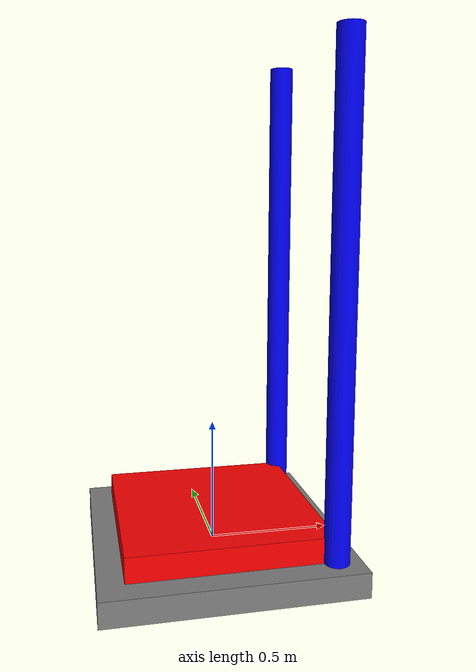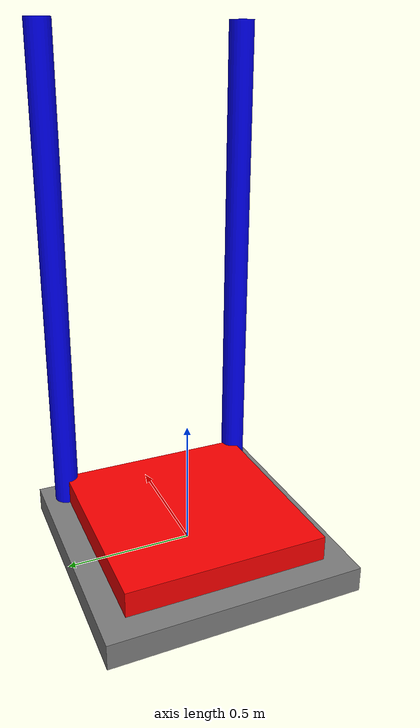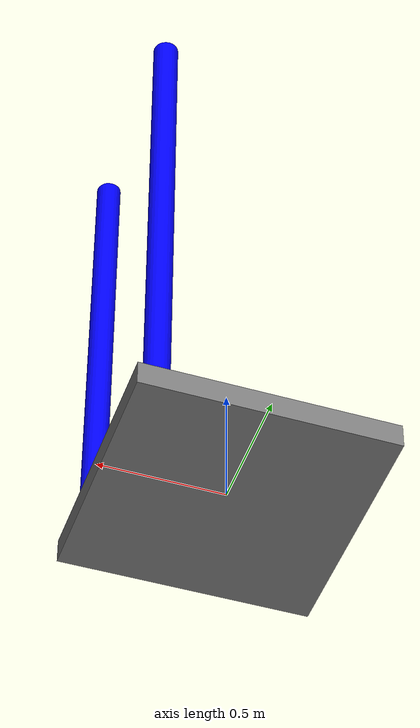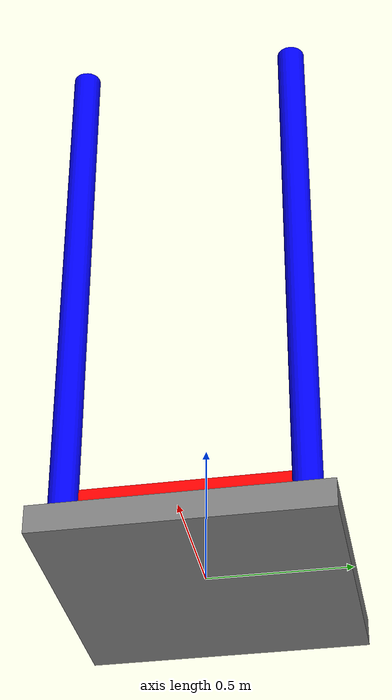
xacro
<?xml version="1.0"?>
<robot xmlns:xacro="http://ros.org/wiki/xacro" name="my_bot">

  <material name="gray">
    <color rgba="0.5 0.5 0.5 1"/>
  </material>
  <material name="blue">
    <color rgba="0.0 0.0 1.0 1"/>
  </material>
  <material name="red">
    <color rgba="1.0 0.0 0.0 1"/>
  </material>

  <xacro:include filename="ros2_control.xacro"/>
  <xacro:include filename="base_link.xacro"/>
  <xacro:include filename="frame.xacro"/>
  <xacro:include filename="elevator.xacro"/>

  <xacro:ros2_control/>
  <xacro:base_link/>
  <xacro:frame/>
  <xacro:elevator/>

  <!-- Gazebo Plugins -->
  <gazebo>
    <plugin name="gazebo_ros_control" filename="libgazebo_ros_control.so"/>
  </gazebo>

</robot>

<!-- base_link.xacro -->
<robot xmlns:xacro="http://www.ros.org/wiki/xacro">
  <xacro:macro name="base_link" params="">
    <link name="base_link">
      <visual>
        <geometry>
          <box size="1 1 0.1"/>
        </geometry>
        <material name="gray"/>
      </visual>
      <collision>
        <geometry>
          <box size="1 1 0.1"/>
        </geometry>
      </collision>
      <inertial>
        <mass value="1.0"/> <!-- Mass in kilograms -->
        <origin xyz="0 0 0" rpy="0 0 0"/> <!-- Center of mass -->
        <inertia ixx="0.1" ixy="0.0" ixz="0.0" iyy="0.1" iyz="0.0" izz="0.1"/> <!-- Moment of inertia -->
      </inertial>
    </link>
  </xacro:macro>
</robot>

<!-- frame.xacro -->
<robot xmlns:xacro="http://www.ros.org/wiki/xacro">
  <xacro:macro name="frame" params="">
    <link name="frame_1">
      <visual>
        <geometry>
          <cylinder length="2" radius="0.05"/>
        </geometry>
        <material name="blue"/>
      </visual>
      <collision>
        <geometry>
          <cylinder length="2" radius="0.05"/>
        </geometry>
      </collision>
      <inertial>
        <mass value="0.5"/> <!-- Adjust mass as needed -->
        <origin xyz="0 0 0" rpy="0 0 0"/>
        <inertia ixx="0.0042" ixy="0.0" ixz="0.0" iyy="0.0042" iyz="0.0" izz="0.0417"/>
      </inertial>
    </link>

    <link name="frame_2">
      <visual>
        <geometry>
          <cylinder length="2" radius="0.05"/>
        </geometry>
        <material name="blue"/>
      </visual>
      <collision>
        <geometry>
          <cylinder length="2" radius="0.05"/>
        </geometry>
      </collision>
      <inertial>
        <mass value="0.5"/> <!-- Adjust mass as needed -->
        <origin xyz="0 0 0" rpy="0 0 0"/>
        <inertia ixx="0.0042" ixy="0.0" ixz="0.0" iyy="0.0042" iyz="0.0" izz="0.0417"/>
      </inertial>
    </link>

    <!-- Joints for Frame -->
    <joint name="frame_1_joint" type="fixed">
      <parent link="base_link"/>
      <child link="frame_1"/>
      <origin xyz="0.4 0.4 1" rpy="0 0 0"/>
    </joint>

    <joint name="frame_2_joint" type="fixed">
      <parent link="base_link"/>
      <child link="frame_2"/>
      <origin xyz="0.4 -0.4 1" rpy="0 0 0"/>
    </joint>
  </xacro:macro>
</robot>

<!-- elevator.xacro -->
<robot xmlns:xacro="http://www.ros.org/wiki/xacro">
  <xacro:macro name="elevator" params="">
    <link name="elevator_platform">
      <visual>
        <geometry>
          <box size="0.8 0.8 0.1"/>
        </geometry>
        <material name="red"/>
      </visual>
      <collision>
        <geometry>
          <box size="0.8 0.8 0.1"/>
        </geometry>
      </collision>
      <inertial>
        <mass value="1.0"/> <!-- Adjust mass as needed -->
        <origin xyz="0 0 0" rpy="0 0 0"/> <!-- Center of mass -->
        <inertia ixx="0.0053" ixy="0.0" ixz="0.0" iyy="0.0053" iyz="0.0" izz="0.1067"/> <!-- Inertia values -->
      </inertial>
    </link>

    <joint name="elevator_joint" type="prismatic">
        <parent link="base_link"/>
        <child link="elevator_platform"/>
        <origin xyz="0 0 0.1" rpy="0 0 0"/>
        <axis xyz="0 0 1"/>
        <limit lower="0.0" upper="1.0" effort="50.0" velocity="0.5"/>
        <dynamics damping="0.5" friction="0.1"/>
        <hardwareInterface>Position</hardwareInterface> <!-- Add this if missing -->
    </joint>

  </xacro:macro>
</robot>
